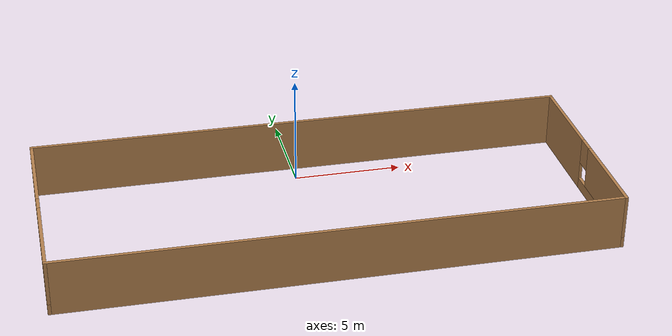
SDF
<?xml version='1.0'?>
<sdf version='1.7'>
  <model name='floor'>
    <pose>0.369209 -3.93594 0 0 -0 0</pose>
    <link name='Wall_0'>
      <pose>-12.425 0 0 0 -0 -1.57075</pose>
      <visual name='Wall_0_Visual_0'>
        <pose>-2.63551 0 1.25 0 -0 0</pose>
        <geometry>
          <box>
            <size>4.72898 0.15 2.5</size>
          </box>
        </geometry>
        <material>
          <script>
            <uri>file://media/materials/scripts/gazebo.material</uri>
            <name>Gazebo/Wood</name>
          </script>
          <ambient>0.921569 0.807843 0.615686 1</ambient>
        </material>
        <meta>
          <layer>0</layer>
        </meta>
      </visual>
      <collision name='Wall_0_Collision_0'>
        <geometry>
          <box>
            <size>4.72898 0.15 2.5</size>
          </box>
        </geometry>
        <pose>-2.63551 0 1.25 0 -0 0</pose>
      </collision>
      <visual name='Wall_0_Visual_1'>
        <pose>2.36449 0 0.25 0 -0 0</pose>
        <geometry>
          <box>
            <size>5.27102 0.15 0.5</size>
          </box>
        </geometry>
        <material>
          <script>
            <uri>file://media/materials/scripts/gazebo.material</uri>
            <name>Gazebo/Wood</name>
          </script>
          <ambient>0.921569 0.807843 0.615686 1</ambient>
        </material>
        <meta>
          <layer>0</layer>
        </meta>
      </visual>
      <collision name='Wall_0_Collision_1'>
        <geometry>
          <box>
            <size>5.27102 0.15 0.5</size>
          </box>
        </geometry>
        <pose>2.36449 0 0.25 0 -0 0</pose>
      </collision>
      <visual name='Wall_0_Visual_2'>
        <pose>2.76449 0 1.5 0 -0 0</pose>
        <geometry>
          <box>
            <size>4.47102 0.15 2</size>
          </box>
        </geometry>
        <material>
          <script>
            <uri>file://media/materials/scripts/gazebo.material</uri>
            <name>Gazebo/Wood</name>
          </script>
          <ambient>0.921569 0.807843 0.615686 1</ambient>
        </material>
        <meta>
          <layer>0</layer>
        </meta>
      </visual>
      <collision name='Wall_0_Collision_2'>
        <geometry>
          <box>
            <size>4.47102 0.15 2</size>
          </box>
        </geometry>
        <pose>2.76449 0 1.5 0 -0 0</pose>
      </collision>
      <visual name='Wall_0_Visual_3'>
        <pose>0.128981 0 1.9 0 -0 0</pose>
        <geometry>
          <box>
            <size>0.8 0.15 1.2</size>
          </box>
        </geometry>
        <material>
          <script>
            <uri>file://media/materials/scripts/gazebo.material</uri>
            <name>Gazebo/Wood</name>
          </script>
          <ambient>0.921569 0.807843 0.615686 1</ambient>
        </material>
        <meta>
          <layer>0</layer>
        </meta>
      </visual>
      <collision name='Wall_0_Collision_3'>
        <geometry>
          <box>
            <size>0.8 0.15 1.2</size>
          </box>
        </geometry>
        <pose>0.128981 0 1.9 0 -0 0</pose>
      </collision>
    </link>
    <link name='Wall_5'>
      <collision name='Wall_5_Collision'>
        <geometry>
          <box>
            <size>25 0.15 2.5</size>
          </box>
        </geometry>
        <pose>0 0 1.25 0 -0 0</pose>
      </collision>
      <visual name='Wall_5_Visual'>
        <pose>0 0 1.25 0 -0 0</pose>
        <geometry>
          <box>
            <size>25 0.15 2.5</size>
          </box>
        </geometry>
        <material>
          <script>
            <uri>file://media/materials/scripts/gazebo.material</uri>
            <name>Gazebo/Wood</name>
          </script>
          <ambient>0.921569 0.807843 0.615686 1</ambient>
        </material>
        <meta>
          <layer>0</layer>
        </meta>
      </visual>
      <pose>0.00021 -4.92494 0 0 -0 0</pose>
    </link>
    <link name='Wall_7'>
      <collision name='Wall_7_Collision'>
        <geometry>
          <box>
            <size>25 0.15 2.5</size>
          </box>
        </geometry>
        <pose>0 0 1.25 0 -0 0</pose>
      </collision>
      <visual name='Wall_7_Visual'>
        <pose>0 0 1.25 0 -0 0</pose>
        <geometry>
          <box>
            <size>25 0.15 2.5</size>
          </box>
        </geometry>
        <material>
          <script>
            <uri>file://media/materials/scripts/gazebo.material</uri>
            <name>Gazebo/Wood</name>
          </script>
          <ambient>0.921569 0.807843 0.615686 1</ambient>
        </material>
        <meta>
          <layer>0</layer>
        </meta>
      </visual>
      <pose>-0.000209 4.92494 0 0 -0 0</pose>
    </link>
    <link name='Wall_9'>
      <pose>12.425 0 0 0 -0 -1.57075</pose>
      <visual name='Wall_9_Visual_0'>
        <pose>-2.68871 0 1.25 0 -0 0</pose>
        <geometry>
          <box>
            <size>4.62258 0.15 2.5</size>
          </box>
        </geometry>
        <material>
          <script>
            <uri>file://media/materials/scripts/gazebo.material</uri>
            <name>Gazebo/Wood</name>
          </script>
          <ambient>1 1 1 1</ambient>
        </material>
        <meta>
          <layer>0</layer>
        </meta>
      </visual>
      <collision name='Wall_9_Collision_0'>
        <geometry>
          <box>
            <size>4.62258 0.15 2.5</size>
          </box>
        </geometry>
        <pose>-2.68871 0 1.25 0 -0 0</pose>
      </collision>
      <visual name='Wall_9_Visual_1'>
        <pose>2.31129 0 0.25 0 -0 0</pose>
        <geometry>
          <box>
            <size>5.37742 0.15 0.5</size>
          </box>
        </geometry>
        <material>
          <script>
            <uri>file://media/materials/scripts/gazebo.material</uri>
            <name>Gazebo/Wood</name>
          </script>
          <ambient>1 1 1 1</ambient>
        </material>
        <meta>
          <layer>0</layer>
        </meta>
      </visual>
      <collision name='Wall_9_Collision_1'>
        <geometry>
          <box>
            <size>5.37742 0.15 0.5</size>
          </box>
        </geometry>
        <pose>2.31129 0 0.25 0 -0 0</pose>
      </collision>
      <visual name='Wall_9_Visual_2'>
        <pose>2.71129 0 1.5 0 -0 0</pose>
        <geometry>
          <box>
            <size>4.57742 0.15 2</size>
          </box>
        </geometry>
        <material>
          <script>
            <uri>file://media/materials/scripts/gazebo.material</uri>
            <name>Gazebo/Wood</name>
          </script>
          <ambient>1 1 1 1</ambient>
        </material>
        <meta>
          <layer>0</layer>
        </meta>
      </visual>
      <collision name='Wall_9_Collision_2'>
        <geometry>
          <box>
            <size>4.57742 0.15 2</size>
          </box>
        </geometry>
        <pose>2.71129 0 1.5 0 -0 0</pose>
      </collision>
      <visual name='Wall_9_Visual_3'>
        <pose>0.022581 0 1.9 0 -0 0</pose>
        <geometry>
          <box>
            <size>0.8 0.15 1.2</size>
          </box>
        </geometry>
        <material>
          <script>
            <uri>file://media/materials/scripts/gazebo.material</uri>
            <name>Gazebo/Wood</name>
          </script>
          <ambient>1 1 1 1</ambient>
        </material>
        <meta>
          <layer>0</layer>
        </meta>
      </visual>
      <collision name='Wall_9_Collision_3'>
        <geometry>
          <box>
            <size>0.8 0.15 1.2</size>
          </box>
        </geometry>
        <pose>0.022581 0 1.9 0 -0 0</pose>
      </collision>
    </link>
    <static>1</static>
  </model>
</sdf>
